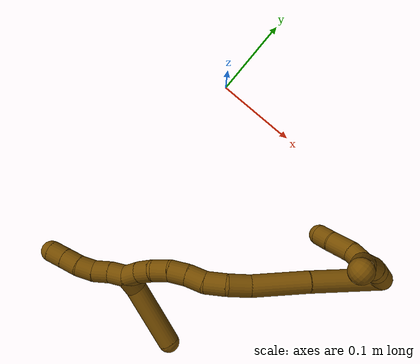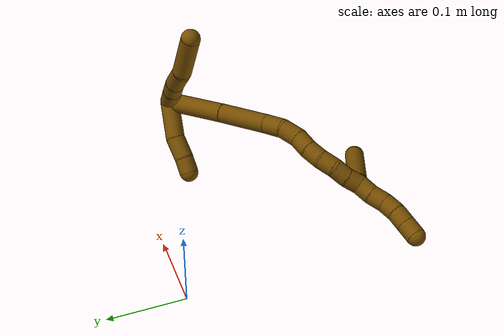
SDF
<sdf version="1.7">
 <world name="default">
  <model name="12">
   <static>0</static>
   <link name="12">
    <collision name="collision-cylinder-e_1_2_8">
     <pose>0.014766 -0.005265 0.007862 0.590055 1.00091 0.329387</pose>
     <geometry><cylinder><radius>0.0125</radius><length>0.035075</length></cylinder></geometry>
     <surface>
      <friction><ode><mu>1.16</mu><mu2>1.16</mu2><slip1>0</slip1><slip2>0</slip2></ode></friction>
      <contact><ode><kp>1e+06</kp><kd>1</kd><max_vel>0</max_vel><min_depth>0.001</min_depth></ode></contact>
     </surface>
    </collision>
    <visual name="visual-cylinder-e_1_2_8">
     <pose>0.014766 -0.005265 0.007862 0.590055 1.00091 0.329387</pose>
     <geometry><cylinder><radius>0.0125</radius><length>0.035075</length></cylinder></geometry>
     <material><ambient>0.466667 0.301961 0 1</ambient></material>
    </visual>
    <collision name="collision-cylinder-e_2_8_9">
     <pose>0.038974 -0.014423 0.020224 0.713291 1.0085 0.405552</pose>
     <geometry><cylinder><radius>0.0125</radius><length>0.022321</length></cylinder></geometry>
     <surface>
      <friction><ode><mu>1.16</mu><mu2>1.16</mu2><slip1>0</slip1><slip2>0</slip2></ode></friction>
      <contact><ode><kp>1e+06</kp><kd>1</kd><max_vel>0</max_vel><min_depth>0.001</min_depth></ode></contact>
     </surface>
    </collision>
    <visual name="visual-cylinder-e_2_8_9">
     <pose>0.038974 -0.014423 0.020224 0.713291 1.0085 0.405552</pose>
     <geometry><cylinder><radius>0.0125</radius><length>0.022321</length></cylinder></geometry>
     <material><ambient>0.466667 0.301961 0 1</ambient></material>
    </visual>
    <collision name="collision-cylinder-e_3_9_10">
     <pose>0.061416 -0.025669 0.032068 0.785904 0.896401 0.393468</pose>
     <geometry><cylinder><radius>0.0125</radius><length>0.033288</length></cylinder></geometry>
     <surface>
      <friction><ode><mu>1.16</mu><mu2>1.16</mu2><slip1>0</slip1><slip2>0</slip2></ode></friction>
      <contact><ode><kp>1e+06</kp><kd>1</kd><max_vel>0</max_vel><min_depth>0.001</min_depth></ode></contact>
     </surface>
    </collision>
    <visual name="visual-cylinder-e_3_9_10">
     <pose>0.061416 -0.025669 0.032068 0.785904 0.896401 0.393468</pose>
     <geometry><cylinder><radius>0.0125</radius><length>0.033288</length></cylinder></geometry>
     <material><ambient>0.466667 0.301961 0 1</ambient></material>
    </visual>
    <collision name="collision-cylinder-e_4_10_6">
     <pose>0.10038 -0.046769 0.043472 1.28373 1.06633 0.830904</pose>
     <geometry><cylinder><radius>0.0125</radius><length>0.059316</length></cylinder></geometry>
     <surface>
      <friction><ode><mu>1.16</mu><mu2>1.16</mu2><slip1>0</slip1><slip2>0</slip2></ode></friction>
      <contact><ode><kp>1e+06</kp><kd>1</kd><max_vel>0</max_vel><min_depth>0.001</min_depth></ode></contact>
     </surface>
    </collision>
    <visual name="visual-cylinder-e_4_10_6">
     <pose>0.10038 -0.046769 0.043472 1.28373 1.06633 0.830904</pose>
     <geometry><cylinder><radius>0.0125</radius><length>0.059316</length></cylinder></geometry>
     <material><ambient>0.466667 0.301961 0 1</ambient></material>
    </visual>
    <collision name="collision-cylinder-e_1_2_11">
     <pose>-0.01446 0.006224 0.019445 -0.309761 -0.616233 0.099296</pose>
     <geometry><cylinder><radius>0.0125</radius><length>0.050038</length></cylinder></geometry>
     <surface>
      <friction><ode><mu>1.16</mu><mu2>1.16</mu2><slip1>0</slip1><slip2>0</slip2></ode></friction>
      <contact><ode><kp>1e+06</kp><kd>1</kd><max_vel>0</max_vel><min_depth>0.001</min_depth></ode></contact>
     </surface>
    </collision>
    <visual name="visual-cylinder-e_1_2_11">
     <pose>-0.01446 0.006224 0.019445 -0.309761 -0.616233 0.099296</pose>
     <geometry><cylinder><radius>0.0125</radius><length>0.050038</length></cylinder></geometry>
     <material><ambient>0.466667 0.301961 0 1</ambient></material>
    </visual>
    <collision name="collision-cylinder-e_2_11_12">
     <pose>-0.03785 0.012421 0.050429 0.002279 -0.658675 -0.000779</pose>
     <geometry><cylinder><radius>0.0125</radius><length>0.02918</length></cylinder></geometry>
     <surface>
      <friction><ode><mu>1.16</mu><mu2>1.16</mu2><slip1>0</slip1><slip2>0</slip2></ode></friction>
      <contact><ode><kp>1e+06</kp><kd>1</kd><max_vel>0</max_vel><min_depth>0.001</min_depth></ode></contact>
     </surface>
    </collision>
    <visual name="visual-cylinder-e_2_11_12">
     <pose>-0.03785 0.012421 0.050429 0.002279 -0.658675 -0.000779</pose>
     <geometry><cylinder><radius>0.0125</radius><length>0.02918</length></cylinder></geometry>
     <material><ambient>0.466667 0.301961 0 1</ambient></material>
    </visual>
    <collision name="collision-cylinder-e_3_12_5">
     <pose>-0.054039 0.013279 0.069349 -0.119197 -0.773378 0.048584</pose>
     <geometry><cylinder><radius>0.0125</radius><length>0.020782</length></cylinder></geometry>
     <surface>
      <friction><ode><mu>1.16</mu><mu2>1.16</mu2><slip1>0</slip1><slip2>0</slip2></ode></friction>
      <contact><ode><kp>1e+06</kp><kd>1</kd><max_vel>0</max_vel><min_depth>0.001</min_depth></ode></contact>
     </surface>
    </collision>
    <visual name="visual-cylinder-e_3_12_5">
     <pose>-0.054039 0.013279 0.069349 -0.119197 -0.773378 0.048584</pose>
     <geometry><cylinder><radius>0.0125</radius><length>0.020782</length></cylinder></geometry>
     <material><ambient>0.466667 0.301961 0 1</ambient></material>
    </visual>
    <collision name="collision-cylinder-e_1_2_13">
     <pose>-0.001283 -0.029441 0.02915 0.79036 -0.030951 -0.012911</pose>
     <geometry><cylinder><radius>0.0125</radius><length>0.0829</length></cylinder></geometry>
     <surface>
      <friction><ode><mu>1.16</mu><mu2>1.16</mu2><slip1>0</slip1><slip2>0</slip2></ode></friction>
      <contact><ode><kp>1e+06</kp><kd>1</kd><max_vel>0</max_vel><min_depth>0.001</min_depth></ode></contact>
     </surface>
    </collision>
    <visual name="visual-cylinder-e_1_2_13">
     <pose>-0.001283 -0.029441 0.02915 0.79036 -0.030951 -0.012911</pose>
     <geometry><cylinder><radius>0.0125</radius><length>0.0829</length></cylinder></geometry>
     <material><ambient>0.466667 0.301961 0 1</ambient></material>
    </visual>
    <collision name="collision-cylinder-e_2_13_14">
     <pose>-0.005683 -0.082209 0.080527 0.80956 -0.096448 -0.041348</pose>
     <geometry><cylinder><radius>0.0125</radius><length>0.064743</length></cylinder></geometry>
     <surface>
      <friction><ode><mu>1.16</mu><mu2>1.16</mu2><slip1>0</slip1><slip2>0</slip2></ode></friction>
      <contact><ode><kp>1e+06</kp><kd>1</kd><max_vel>0</max_vel><min_depth>0.001</min_depth></ode></contact>
     </surface>
    </collision>
    <visual name="visual-cylinder-e_2_13_14">
     <pose>-0.005683 -0.082209 0.080527 0.80956 -0.096448 -0.041348</pose>
     <geometry><cylinder><radius>0.0125</radius><length>0.064743</length></cylinder></geometry>
     <material><ambient>0.466667 0.301961 0 1</ambient></material>
    </visual>
    <collision name="collision-cylinder-e_3_14_15">
     <pose>-0.008764 -0.113932 0.112495 0.711339 0.002815 0.001046</pose>
     <geometry><cylinder><radius>0.0125</radius><length>0.025721</length></cylinder></geometry>
     <surface>
      <friction><ode><mu>1.16</mu><mu2>1.16</mu2><slip1>0</slip1><slip2>0</slip2></ode></friction>
      <contact><ode><kp>1e+06</kp><kd>1</kd><max_vel>0</max_vel><min_depth>0.001</min_depth></ode></contact>
     </surface>
    </collision>
    <visual name="visual-cylinder-e_3_14_15">
     <pose>-0.008764 -0.113932 0.112495 0.711339 0.002815 0.001046</pose>
     <geometry><cylinder><radius>0.0125</radius><length>0.025721</length></cylinder></geometry>
     <material><ambient>0.466667 0.301961 0 1</ambient></material>
    </visual>
    <collision name="collision-cylinder-e_4_15_16">
     <pose>-0.012297 -0.12882 0.131845 0.594141 -0.29859 -0.092027</pose>
     <geometry><cylinder><radius>0.0125</radius><length>0.024265</length></cylinder></geometry>
     <surface>
      <friction><ode><mu>1.16</mu><mu2>1.16</mu2><slip1>0</slip1><slip2>0</slip2></ode></friction>
      <contact><ode><kp>1e+06</kp><kd>1</kd><max_vel>0</max_vel><min_depth>0.001</min_depth></ode></contact>
     </surface>
    </collision>
    <visual name="visual-cylinder-e_4_15_16">
     <pose>-0.012297 -0.12882 0.131845 0.594141 -0.29859 -0.092027</pose>
     <geometry><cylinder><radius>0.0125</radius><length>0.024265</length></cylinder></geometry>
     <material><ambient>0.466667 0.301961 0 1</ambient></material>
    </visual>
    <collision name="collision-cylinder-e_5_16_17">
     <pose>-0.019228 -0.138202 0.15107 0.292092 -0.32306 -0.047929</pose>
     <geometry><cylinder><radius>0.0125</radius><length>0.021179</length></cylinder></geometry>
     <surface>
      <friction><ode><mu>1.16</mu><mu2>1.16</mu2><slip1>0</slip1><slip2>0</slip2></ode></friction>
      <contact><ode><kp>1e+06</kp><kd>1</kd><max_vel>0</max_vel><min_depth>0.001</min_depth></ode></contact>
     </surface>
    </collision>
    <visual name="visual-cylinder-e_5_16_17">
     <pose>-0.019228 -0.138202 0.15107 0.292092 -0.32306 -0.047929</pose>
     <geometry><cylinder><radius>0.0125</radius><length>0.021179</length></cylinder></geometry>
     <material><ambient>0.466667 0.301961 0 1</ambient></material>
    </visual>
    <collision name="collision-cylinder-e_6_17_18">
     <pose>-0.025876 -0.145458 0.169557 0.457193 -0.320965 -0.075289</pose>
     <geometry><cylinder><radius>0.0125</radius><length>0.020837</length></cylinder></geometry>
     <surface>
      <friction><ode><mu>1.16</mu><mu2>1.16</mu2><slip1>0</slip1><slip2>0</slip2></ode></friction>
      <contact><ode><kp>1e+06</kp><kd>1</kd><max_vel>0</max_vel><min_depth>0.001</min_depth></ode></contact>
     </surface>
    </collision>
    <visual name="visual-cylinder-e_6_17_18">
     <pose>-0.025876 -0.145458 0.169557 0.457193 -0.320965 -0.075289</pose>
     <geometry><cylinder><radius>0.0125</radius><length>0.020837</length></cylinder></geometry>
     <material><ambient>0.466667 0.301961 0 1</ambient></material>
    </visual>
    <collision name="collision-cylinder-e_7_18_19">
     <pose>-0.033661 -0.15534 0.185469 0.664752 -0.465898 -0.163429</pose>
     <geometry><cylinder><radius>0.0125</radius><length>0.020025</length></cylinder></geometry>
     <surface>
      <friction><ode><mu>1.16</mu><mu2>1.16</mu2><slip1>0</slip1><slip2>0</slip2></ode></friction>
      <contact><ode><kp>1e+06</kp><kd>1</kd><max_vel>0</max_vel><min_depth>0.001</min_depth></ode></contact>
     </surface>
    </collision>
    <visual name="visual-cylinder-e_7_18_19">
     <pose>-0.033661 -0.15534 0.185469 0.664752 -0.465898 -0.163429</pose>
     <geometry><cylinder><radius>0.0125</radius><length>0.020025</length></cylinder></geometry>
     <material><ambient>0.466667 0.301961 0 1</ambient></material>
    </visual>
    <collision name="collision-cylinder-e_8_19_20">
     <pose>-0.045315 -0.165582 0.197868 0.722508 -0.786238 -0.310853</pose>
     <geometry><cylinder><radius>0.0125</radius><length>0.020222</length></cylinder></geometry>
     <surface>
      <friction><ode><mu>1.16</mu><mu2>1.16</mu2><slip1>0</slip1><slip2>0</slip2></ode></friction>
      <contact><ode><kp>1e+06</kp><kd>1</kd><max_vel>0</max_vel><min_depth>0.001</min_depth></ode></contact>
     </surface>
    </collision>
    <visual name="visual-cylinder-e_8_19_20">
     <pose>-0.045315 -0.165582 0.197868 0.722508 -0.786238 -0.310853</pose>
     <geometry><cylinder><radius>0.0125</radius><length>0.020222</length></cylinder></geometry>
     <material><ambient>0.466667 0.301961 0 1</ambient></material>
    </visual>
    <collision name="collision-cylinder-e_9_20_1">
     <pose>-0.059116 -0.176342 0.207753 0.927364 -0.722188 -0.373289</pose>
     <geometry><cylinder><radius>0.0125</radius><length>0.020107</length></cylinder></geometry>
     <surface>
      <friction><ode><mu>1.16</mu><mu2>1.16</mu2><slip1>0</slip1><slip2>0</slip2></ode></friction>
      <contact><ode><kp>1e+06</kp><kd>1</kd><max_vel>0</max_vel><min_depth>0.001</min_depth></ode></contact>
     </surface>
    </collision>
    <visual name="visual-cylinder-e_9_20_1">
     <pose>-0.059116 -0.176342 0.207753 0.927364 -0.722188 -0.373289</pose>
     <geometry><cylinder><radius>0.0125</radius><length>0.020107</length></cylinder></geometry>
     <material><ambient>0.466667 0.301961 0 1</ambient></material>
    </visual>
    <collision name="collision-cylinder-e_1_1_21">
     <pose>-0.072377 -0.182595 0.204203 3.11459 -0.686062 -3.06602</pose>
     <geometry><cylinder><radius>0.0125</radius><length>0.020884</length></cylinder></geometry>
     <surface>
      <friction><ode><mu>1.16</mu><mu2>1.16</mu2><slip1>0</slip1><slip2>0</slip2></ode></friction>
      <contact><ode><kp>1e+06</kp><kd>1</kd><max_vel>0</max_vel><min_depth>0.001</min_depth></ode></contact>
     </surface>
    </collision>
    <visual name="visual-cylinder-e_1_1_21">
     <pose>-0.072377 -0.182595 0.204203 3.11459 -0.686062 -3.06602</pose>
     <geometry><cylinder><radius>0.0125</radius><length>0.020884</length></cylinder></geometry>
     <material><ambient>0.466667 0.301961 0 1</ambient></material>
    </visual>
    <collision name="collision-cylinder-e_2_21_4">
     <pose>-0.094265 -0.190702 0.160498 2.92368 -0.396401 -2.14411</pose>
     <geometry><cylinder><radius>0.0125</radius><length>0.079116</length></cylinder></geometry>
     <surface>
      <friction><ode><mu>1.16</mu><mu2>1.16</mu2><slip1>0</slip1><slip2>0</slip2></ode></friction>
      <contact><ode><kp>1e+06</kp><kd>1</kd><max_vel>0</max_vel><min_depth>0.001</min_depth></ode></contact>
     </surface>
    </collision>
    <visual name="visual-cylinder-e_2_21_4">
     <pose>-0.094265 -0.190702 0.160498 2.92368 -0.396401 -2.14411</pose>
     <geometry><cylinder><radius>0.0125</radius><length>0.079116</length></cylinder></geometry>
     <material><ambient>0.466667 0.301961 0 1</ambient></material>
    </visual>
    <collision name="collision-cylinder-e_1_1_22">
     <pose>-0.069404 -0.186399 0.220679 0.446612 -0.372789 -0.0856</pose>
     <geometry><cylinder><radius>0.0125</radius><length>0.02</length></cylinder></geometry>
     <surface>
      <friction><ode><mu>1.16</mu><mu2>1.16</mu2><slip1>0</slip1><slip2>0</slip2></ode></friction>
      <contact><ode><kp>1e+06</kp><kd>1</kd><max_vel>0</max_vel><min_depth>0.001</min_depth></ode></contact>
     </surface>
    </collision>
    <visual name="visual-cylinder-e_1_1_22">
     <pose>-0.069404 -0.186399 0.220679 0.446612 -0.372789 -0.0856</pose>
     <geometry><cylinder><radius>0.0125</radius><length>0.02</length></cylinder></geometry>
     <material><ambient>0.466667 0.301961 0 1</ambient></material>
    </visual>
    <collision name="collision-cylinder-e_2_22_23">
     <pose>-0.076401 -0.195933 0.236719 0.624877 -0.342158 -0.111499</pose>
     <geometry><cylinder><radius>0.0125</radius><length>0.02</length></cylinder></geometry>
     <surface>
      <friction><ode><mu>1.16</mu><mu2>1.16</mu2><slip1>0</slip1><slip2>0</slip2></ode></friction>
      <contact><ode><kp>1e+06</kp><kd>1</kd><max_vel>0</max_vel><min_depth>0.001</min_depth></ode></contact>
     </surface>
    </collision>
    <visual name="visual-cylinder-e_2_22_23">
     <pose>-0.076401 -0.195933 0.236719 0.624877 -0.342158 -0.111499</pose>
     <geometry><cylinder><radius>0.0125</radius><length>0.02</length></cylinder></geometry>
     <material><ambient>0.466667 0.301961 0 1</ambient></material>
    </visual>
    <collision name="collision-cylinder-e_3_23_24">
     <pose>-0.081935 -0.20522 0.253358 0.397295 -0.219588 -0.044375</pose>
     <geometry><cylinder><radius>0.0125</radius><length>0.02</length></cylinder></geometry>
     <surface>
      <friction><ode><mu>1.16</mu><mu2>1.16</mu2><slip1>0</slip1><slip2>0</slip2></ode></friction>
      <contact><ode><kp>1e+06</kp><kd>1</kd><max_vel>0</max_vel><min_depth>0.001</min_depth></ode></contact>
     </surface>
    </collision>
    <visual name="visual-cylinder-e_3_23_24">
     <pose>-0.081935 -0.20522 0.253358 0.397295 -0.219588 -0.044375</pose>
     <geometry><cylinder><radius>0.0125</radius><length>0.02</length></cylinder></geometry>
     <material><ambient>0.466667 0.301961 0 1</ambient></material>
    </visual>
    <collision name="collision-cylinder-e_4_24_25">
     <pose>-0.086931 -0.211128 0.271713 0.224084 -0.285655 -0.032358</pose>
     <geometry><cylinder><radius>0.0125</radius><length>0.02</length></cylinder></geometry>
     <surface>
      <friction><ode><mu>1.16</mu><mu2>1.16</mu2><slip1>0</slip1><slip2>0</slip2></ode></friction>
      <contact><ode><kp>1e+06</kp><kd>1</kd><max_vel>0</max_vel><min_depth>0.001</min_depth></ode></contact>
     </surface>
    </collision>
    <visual name="visual-cylinder-e_4_24_25">
     <pose>-0.086931 -0.211128 0.271713 0.224084 -0.285655 -0.032358</pose>
     <geometry><cylinder><radius>0.0125</radius><length>0.02</length></cylinder></geometry>
     <material><ambient>0.466667 0.301961 0 1</ambient></material>
    </visual>
    <collision name="collision-cylinder-e_5_25_3">
     <pose>-0.092642 -0.215436 0.29039 0.229322 -0.293524 -0.034046</pose>
     <geometry><cylinder><radius>0.0125</radius><length>0.02</length></cylinder></geometry>
     <surface>
      <friction><ode><mu>1.16</mu><mu2>1.16</mu2><slip1>0</slip1><slip2>0</slip2></ode></friction>
      <contact><ode><kp>1e+06</kp><kd>1</kd><max_vel>0</max_vel><min_depth>0.001</min_depth></ode></contact>
     </surface>
    </collision>
    <visual name="visual-cylinder-e_5_25_3">
     <pose>-0.092642 -0.215436 0.29039 0.229322 -0.293524 -0.034046</pose>
     <geometry><cylinder><radius>0.0125</radius><length>0.02</length></cylinder></geometry>
     <material><ambient>0.466667 0.301961 0 1</ambient></material>
    </visual>
    <collision name="collision-sphere-3">
     <pose>-0.095535 -0.217612 0.299711 0 -0 0</pose>
     <geometry><sphere><radius>0.0125</radius></sphere></geometry>
     <surface>
      <friction><ode><mu>1.16</mu><mu2>1.16</mu2><slip1>0</slip1><slip2>0</slip2></ode></friction>
      <contact><ode><kp>1e+06</kp><kd>1</kd><max_vel>0</max_vel><min_depth>0.001</min_depth></ode></contact>
     </surface>
    </collision>
    <visual name="visual-sphere-3">
     <pose>-0.095535 -0.217612 0.299711 0 -0 0</pose>
     <geometry><sphere><radius>0.0125</radius></sphere></geometry>
     <material><ambient>0.466667 0.301961 0 1</ambient></material>
    </visual>
    <collision name="collision-sphere-25">
     <pose>-0.089749 -0.213261 0.281068 0 -0 0</pose>
     <geometry><sphere><radius>0.0125</radius></sphere></geometry>
     <surface>
      <friction><ode><mu>1.16</mu><mu2>1.16</mu2><slip1>0</slip1><slip2>0</slip2></ode></friction>
      <contact><ode><kp>1e+06</kp><kd>1</kd><max_vel>0</max_vel><min_depth>0.001</min_depth></ode></contact>
     </surface>
    </collision>
    <visual name="visual-sphere-25">
     <pose>-0.089749 -0.213261 0.281068 0 -0 0</pose>
     <geometry><sphere><radius>0.0125</radius></sphere></geometry>
     <material><ambient>0.466667 0.301961 0 1</ambient></material>
    </visual>
    <collision name="collision-sphere-24">
     <pose>-0.084113 -0.208996 0.262358 0 -0 0</pose>
     <geometry><sphere><radius>0.0125</radius></sphere></geometry>
     <surface>
      <friction><ode><mu>1.16</mu><mu2>1.16</mu2><slip1>0</slip1><slip2>0</slip2></ode></friction>
      <contact><ode><kp>1e+06</kp><kd>1</kd><max_vel>0</max_vel><min_depth>0.001</min_depth></ode></contact>
     </surface>
    </collision>
    <visual name="visual-sphere-24">
     <pose>-0.084113 -0.208996 0.262358 0 -0 0</pose>
     <geometry><sphere><radius>0.0125</radius></sphere></geometry>
     <material><ambient>0.466667 0.301961 0 1</ambient></material>
    </visual>
    <collision name="collision-sphere-23">
     <pose>-0.079756 -0.201444 0.244359 0 -0 0</pose>
     <geometry><sphere><radius>0.0125</radius></sphere></geometry>
     <surface>
      <friction><ode><mu>1.16</mu><mu2>1.16</mu2><slip1>0</slip1><slip2>0</slip2></ode></friction>
      <contact><ode><kp>1e+06</kp><kd>1</kd><max_vel>0</max_vel><min_depth>0.001</min_depth></ode></contact>
     </surface>
    </collision>
    <visual name="visual-sphere-23">
     <pose>-0.079756 -0.201444 0.244359 0 -0 0</pose>
     <geometry><sphere><radius>0.0125</radius></sphere></geometry>
     <material><ambient>0.466667 0.301961 0 1</ambient></material>
    </visual>
    <collision name="collision-sphere-22">
     <pose>-0.073046 -0.190422 0.229078 0 -0 0</pose>
     <geometry><sphere><radius>0.0125</radius></sphere></geometry>
     <surface>
      <friction><ode><mu>1.16</mu><mu2>1.16</mu2><slip1>0</slip1><slip2>0</slip2></ode></friction>
      <contact><ode><kp>1e+06</kp><kd>1</kd><max_vel>0</max_vel><min_depth>0.001</min_depth></ode></contact>
     </surface>
    </collision>
    <visual name="visual-sphere-22">
     <pose>-0.073046 -0.190422 0.229078 0 -0 0</pose>
     <geometry><sphere><radius>0.0125</radius></sphere></geometry>
     <material><ambient>0.466667 0.301961 0 1</ambient></material>
    </visual>
    <collision name="collision-sphere-4">
     <pose>-0.109538 -0.198591 0.124871 0 -0 0</pose>
     <geometry><sphere><radius>0.0125</radius></sphere></geometry>
     <surface>
      <friction><ode><mu>1.16</mu><mu2>1.16</mu2><slip1>0</slip1><slip2>0</slip2></ode></friction>
      <contact><ode><kp>1e+06</kp><kd>1</kd><max_vel>0</max_vel><min_depth>0.001</min_depth></ode></contact>
     </surface>
    </collision>
    <visual name="visual-sphere-4">
     <pose>-0.109538 -0.198591 0.124871 0 -0 0</pose>
     <geometry><sphere><radius>0.0125</radius></sphere></geometry>
     <material><ambient>0.466667 0.301961 0 1</ambient></material>
    </visual>
    <collision name="collision-sphere-21">
     <pose>-0.078991 -0.182813 0.196126 0 -0 0</pose>
     <geometry><sphere><radius>0.0125</radius></sphere></geometry>
     <surface>
      <friction><ode><mu>1.16</mu><mu2>1.16</mu2><slip1>0</slip1><slip2>0</slip2></ode></friction>
      <contact><ode><kp>1e+06</kp><kd>1</kd><max_vel>0</max_vel><min_depth>0.001</min_depth></ode></contact>
     </surface>
    </collision>
    <visual name="visual-sphere-21">
     <pose>-0.078991 -0.182813 0.196126 0 -0 0</pose>
     <geometry><sphere><radius>0.0125</radius></sphere></geometry>
     <material><ambient>0.466667 0.301961 0 1</ambient></material>
    </visual>
    <collision name="collision-sphere-1">
     <pose>-0.065762 -0.182377 0.212279 0 -0 0</pose>
     <geometry><sphere><radius>0.0125</radius></sphere></geometry>
     <surface>
      <friction><ode><mu>1.16</mu><mu2>1.16</mu2><slip1>0</slip1><slip2>0</slip2></ode></friction>
      <contact><ode><kp>1e+06</kp><kd>1</kd><max_vel>0</max_vel><min_depth>0.001</min_depth></ode></contact>
     </surface>
    </collision>
    <visual name="visual-sphere-1">
     <pose>-0.065762 -0.182377 0.212279 0 -0 0</pose>
     <geometry><sphere><radius>0.0125</radius></sphere></geometry>
     <material><ambient>0.466667 0.301961 0 1</ambient></material>
    </visual>
    <collision name="collision-sphere-11">
     <pose>-0.02892 0.012448 0.038891 0 -0 0</pose>
     <geometry><sphere><radius>0.0125</radius></sphere></geometry>
     <surface>
      <friction><ode><mu>1.16</mu><mu2>1.16</mu2><slip1>0</slip1><slip2>0</slip2></ode></friction>
      <contact><ode><kp>1e+06</kp><kd>1</kd><max_vel>0</max_vel><min_depth>0.001</min_depth></ode></contact>
     </surface>
    </collision>
    <visual name="visual-sphere-11">
     <pose>-0.02892 0.012448 0.038891 0 -0 0</pose>
     <geometry><sphere><radius>0.0125</radius></sphere></geometry>
     <material><ambient>0.466667 0.301961 0 1</ambient></material>
    </visual>
    <collision name="collision-sphere-6">
     <pose>0.126344 -0.060518 0.047531 0 -0 0</pose>
     <geometry><sphere><radius>0.0125</radius></sphere></geometry>
     <surface>
      <friction><ode><mu>1.16</mu><mu2>1.16</mu2><slip1>0</slip1><slip2>0</slip2></ode></friction>
      <contact><ode><kp>1e+06</kp><kd>1</kd><max_vel>0</max_vel><min_depth>0.001</min_depth></ode></contact>
     </surface>
    </collision>
    <visual name="visual-sphere-6">
     <pose>0.126344 -0.060518 0.047531 0 -0 0</pose>
     <geometry><sphere><radius>0.0125</radius></sphere></geometry>
     <material><ambient>0.466667 0.301961 0 1</ambient></material>
    </visual>
    <collision name="collision-sphere-10">
     <pose>0.074417 -0.033021 0.039413 0 -0 0</pose>
     <geometry><sphere><radius>0.0125</radius></sphere></geometry>
     <surface>
      <friction><ode><mu>1.16</mu><mu2>1.16</mu2><slip1>0</slip1><slip2>0</slip2></ode></friction>
      <contact><ode><kp>1e+06</kp><kd>1</kd><max_vel>0</max_vel><min_depth>0.001</min_depth></ode></contact>
     </surface>
    </collision>
    <visual name="visual-sphere-10">
     <pose>0.074417 -0.033021 0.039413 0 -0 0</pose>
     <geometry><sphere><radius>0.0125</radius></sphere></geometry>
     <material><ambient>0.466667 0.301961 0 1</ambient></material>
    </visual>
    <collision name="collision-sphere-9">
     <pose>0.048416 -0.018316 0.024723 0 -0 0</pose>
     <geometry><sphere><radius>0.0125</radius></sphere></geometry>
     <surface>
      <friction><ode><mu>1.16</mu><mu2>1.16</mu2><slip1>0</slip1><slip2>0</slip2></ode></friction>
      <contact><ode><kp>1e+06</kp><kd>1</kd><max_vel>0</max_vel><min_depth>0.001</min_depth></ode></contact>
     </surface>
    </collision>
    <visual name="visual-sphere-9">
     <pose>0.048416 -0.018316 0.024723 0 -0 0</pose>
     <geometry><sphere><radius>0.0125</radius></sphere></geometry>
     <material><ambient>0.466667 0.301961 0 1</ambient></material>
    </visual>
    <collision name="collision-sphere-2">
     <geometry><sphere><radius>0.0125</radius></sphere></geometry>
     <surface>
      <friction><ode><mu>1.16</mu><mu2>1.16</mu2><slip1>0</slip1><slip2>0</slip2></ode></friction>
      <contact><ode><kp>1e+06</kp><kd>1</kd><max_vel>0</max_vel><min_depth>0.001</min_depth></ode></contact>
     </surface>
    </collision>
    <visual name="visual-sphere-2">
     <geometry><sphere><radius>0.0125</radius></sphere></geometry>
     <material><ambient>0.466667 0.301961 0 1</ambient></material>
    </visual>
    <collision name="collision-sphere-19">
     <pose>-0.038159 -0.160859 0.19251 0 -0 0</pose>
     <geometry><sphere><radius>0.0125</radius></sphere></geometry>
     <surface>
      <friction><ode><mu>1.16</mu><mu2>1.16</mu2><slip1>0</slip1><slip2>0</slip2></ode></friction>
      <contact><ode><kp>1e+06</kp><kd>1</kd><max_vel>0</max_vel><min_depth>0.001</min_depth></ode></contact>
     </surface>
    </collision>
    <visual name="visual-sphere-19">
     <pose>-0.038159 -0.160859 0.19251 0 -0 0</pose>
     <geometry><sphere><radius>0.0125</radius></sphere></geometry>
     <material><ambient>0.466667 0.301961 0 1</ambient></material>
    </visual>
    <collision name="collision-sphere-8">
     <pose>0.029532 -0.010529 0.015724 0 -0 0</pose>
     <geometry><sphere><radius>0.0125</radius></sphere></geometry>
     <surface>
      <friction><ode><mu>1.16</mu><mu2>1.16</mu2><slip1>0</slip1><slip2>0</slip2></ode></friction>
      <contact><ode><kp>1e+06</kp><kd>1</kd><max_vel>0</max_vel><min_depth>0.001</min_depth></ode></contact>
     </surface>
    </collision>
    <visual name="visual-sphere-8">
     <pose>0.029532 -0.010529 0.015724 0 -0 0</pose>
     <geometry><sphere><radius>0.0125</radius></sphere></geometry>
     <material><ambient>0.466667 0.301961 0 1</ambient></material>
    </visual>
    <collision name="collision-sphere-12">
     <pose>-0.04678 0.012395 0.061966 0 -0 0</pose>
     <geometry><sphere><radius>0.0125</radius></sphere></geometry>
     <surface>
      <friction><ode><mu>1.16</mu><mu2>1.16</mu2><slip1>0</slip1><slip2>0</slip2></ode></friction>
      <contact><ode><kp>1e+06</kp><kd>1</kd><max_vel>0</max_vel><min_depth>0.001</min_depth></ode></contact>
     </surface>
    </collision>
    <visual name="visual-sphere-12">
     <pose>-0.04678 0.012395 0.061966 0 -0 0</pose>
     <geometry><sphere><radius>0.0125</radius></sphere></geometry>
     <material><ambient>0.466667 0.301961 0 1</ambient></material>
    </visual>
    <collision name="collision-sphere-5">
     <pose>-0.061298 0.014163 0.076731 0 -0 0</pose>
     <geometry><sphere><radius>0.0125</radius></sphere></geometry>
     <surface>
      <friction><ode><mu>1.16</mu><mu2>1.16</mu2><slip1>0</slip1><slip2>0</slip2></ode></friction>
      <contact><ode><kp>1e+06</kp><kd>1</kd><max_vel>0</max_vel><min_depth>0.001</min_depth></ode></contact>
     </surface>
    </collision>
    <visual name="visual-sphere-5">
     <pose>-0.061298 0.014163 0.076731 0 -0 0</pose>
     <geometry><sphere><radius>0.0125</radius></sphere></geometry>
     <material><ambient>0.466667 0.301961 0 1</ambient></material>
    </visual>
    <collision name="collision-sphere-13">
     <pose>-0.002565 -0.058881 0.0583 0 -0 0</pose>
     <geometry><sphere><radius>0.0125</radius></sphere></geometry>
     <surface>
      <friction><ode><mu>1.16</mu><mu2>1.16</mu2><slip1>0</slip1><slip2>0</slip2></ode></friction>
      <contact><ode><kp>1e+06</kp><kd>1</kd><max_vel>0</max_vel><min_depth>0.001</min_depth></ode></contact>
     </surface>
    </collision>
    <visual name="visual-sphere-13">
     <pose>-0.002565 -0.058881 0.0583 0 -0 0</pose>
     <geometry><sphere><radius>0.0125</radius></sphere></geometry>
     <material><ambient>0.466667 0.301961 0 1</ambient></material>
    </visual>
    <collision name="collision-sphere-14">
     <pose>-0.0088 -0.105537 0.102753 0 -0 0</pose>
     <geometry><sphere><radius>0.0125</radius></sphere></geometry>
     <surface>
      <friction><ode><mu>1.16</mu><mu2>1.16</mu2><slip1>0</slip1><slip2>0</slip2></ode></friction>
      <contact><ode><kp>1e+06</kp><kd>1</kd><max_vel>0</max_vel><min_depth>0.001</min_depth></ode></contact>
     </surface>
    </collision>
    <visual name="visual-sphere-14">
     <pose>-0.0088 -0.105537 0.102753 0 -0 0</pose>
     <geometry><sphere><radius>0.0125</radius></sphere></geometry>
     <material><ambient>0.466667 0.301961 0 1</ambient></material>
    </visual>
    <collision name="collision-sphere-15">
     <pose>-0.008728 -0.122328 0.122236 0 -0 0</pose>
     <geometry><sphere><radius>0.0125</radius></sphere></geometry>
     <surface>
      <friction><ode><mu>1.16</mu><mu2>1.16</mu2><slip1>0</slip1><slip2>0</slip2></ode></friction>
      <contact><ode><kp>1e+06</kp><kd>1</kd><max_vel>0</max_vel><min_depth>0.001</min_depth></ode></contact>
     </surface>
    </collision>
    <visual name="visual-sphere-15">
     <pose>-0.008728 -0.122328 0.122236 0 -0 0</pose>
     <geometry><sphere><radius>0.0125</radius></sphere></geometry>
     <material><ambient>0.466667 0.301961 0 1</ambient></material>
    </visual>
    <collision name="collision-sphere-16">
     <pose>-0.015866 -0.135311 0.141454 0 -0 0</pose>
     <geometry><sphere><radius>0.0125</radius></sphere></geometry>
     <surface>
      <friction><ode><mu>1.16</mu><mu2>1.16</mu2><slip1>0</slip1><slip2>0</slip2></ode></friction>
      <contact><ode><kp>1e+06</kp><kd>1</kd><max_vel>0</max_vel><min_depth>0.001</min_depth></ode></contact>
     </surface>
    </collision>
    <visual name="visual-sphere-16">
     <pose>-0.015866 -0.135311 0.141454 0 -0 0</pose>
     <geometry><sphere><radius>0.0125</radius></sphere></geometry>
     <material><ambient>0.466667 0.301961 0 1</ambient></material>
    </visual>
    <collision name="collision-sphere-17">
     <pose>-0.02259 -0.141094 0.160686 0 -0 0</pose>
     <geometry><sphere><radius>0.0125</radius></sphere></geometry>
     <surface>
      <friction><ode><mu>1.16</mu><mu2>1.16</mu2><slip1>0</slip1><slip2>0</slip2></ode></friction>
      <contact><ode><kp>1e+06</kp><kd>1</kd><max_vel>0</max_vel><min_depth>0.001</min_depth></ode></contact>
     </surface>
    </collision>
    <visual name="visual-sphere-17">
     <pose>-0.02259 -0.141094 0.160686 0 -0 0</pose>
     <geometry><sphere><radius>0.0125</radius></sphere></geometry>
     <material><ambient>0.466667 0.301961 0 1</ambient></material>
    </visual>
    <collision name="collision-sphere-18">
     <pose>-0.029163 -0.149822 0.178428 0 -0 0</pose>
     <geometry><sphere><radius>0.0125</radius></sphere></geometry>
     <surface>
      <friction><ode><mu>1.16</mu><mu2>1.16</mu2><slip1>0</slip1><slip2>0</slip2></ode></friction>
      <contact><ode><kp>1e+06</kp><kd>1</kd><max_vel>0</max_vel><min_depth>0.001</min_depth></ode></contact>
     </surface>
    </collision>
    <visual name="visual-sphere-18">
     <pose>-0.029163 -0.149822 0.178428 0 -0 0</pose>
     <geometry><sphere><radius>0.0125</radius></sphere></geometry>
     <material><ambient>0.466667 0.301961 0 1</ambient></material>
    </visual>
    <collision name="collision-sphere-20">
     <pose>-0.05247 -0.170306 0.203227 0 -0 0</pose>
     <geometry><sphere><radius>0.0125</radius></sphere></geometry>
     <surface>
      <friction><ode><mu>1.16</mu><mu2>1.16</mu2><slip1>0</slip1><slip2>0</slip2></ode></friction>
      <contact><ode><kp>1e+06</kp><kd>1</kd><max_vel>0</max_vel><min_depth>0.001</min_depth></ode></contact>
     </surface>
    </collision>
    <visual name="visual-sphere-20">
     <pose>-0.05247 -0.170306 0.203227 0 -0 0</pose>
     <geometry><sphere><radius>0.0125</radius></sphere></geometry>
     <material><ambient>0.466667 0.301961 0 1</ambient></material>
    </visual>
    <inertial>
     <pose>-0.020538 -0.096201 0.110702 0 -0 0</pose>
     <mass>0.75</mass>
     <inertia><ixx>6.3e-05</ixx><ixy>0</ixy><ixz>0</ixz><iyy>9.2e-05</iyy><iyz>0</iyz><izz>0.00012</izz></inertia>
    </inertial>
   </link>
   <pose>0.278386 -0.065955 0.082419 -1.80154 -1.2567 1.74544</pose>
  </model>
 </world>
</sdf>
